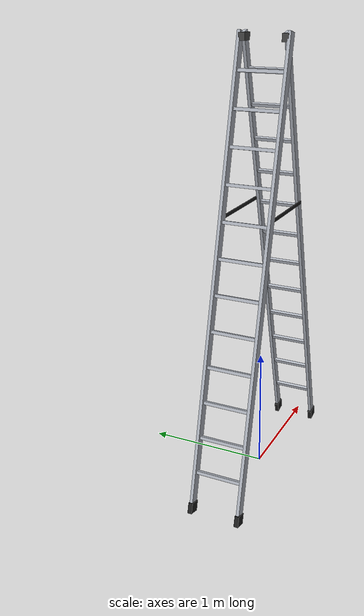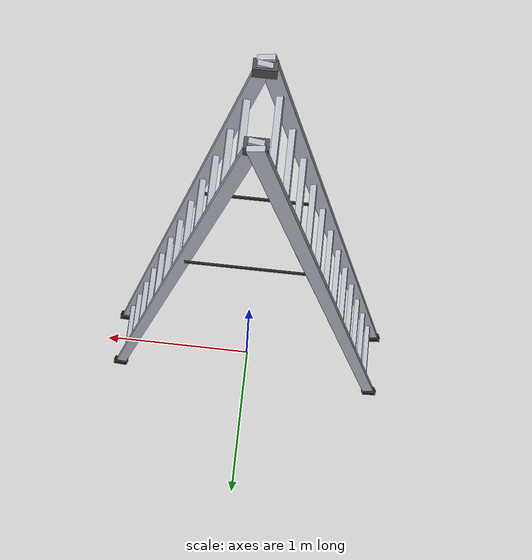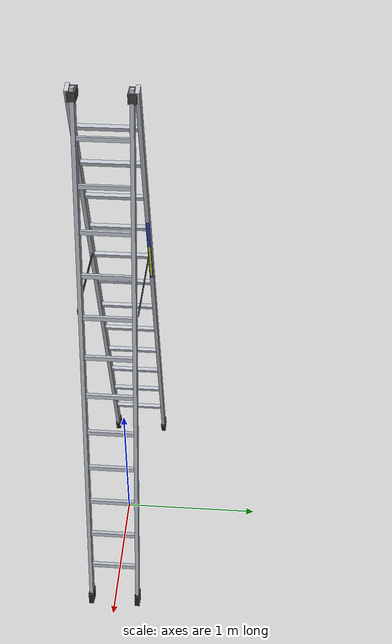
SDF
<?xml version="1.0" ?>
<sdf version="1.7">
  <model name="zarges_z600_40284">
    <static>true</static>
    <link name="base_link">
      <inertial>
        <pose>-0.0309624 0.000230729 1.79707 0 0 0</pose>
        <mass>15</mass>
        <inertia>
          <ixx>17.0625</ixx><ixy>0.000883718</ixy><ixz>-0.240365</ixz>
          <iyy>20.6274</iyy><iyz>-0.00166835</iyz><izz>4.44956</izz>
        </inertia>
      </inertial>
      <visual name="v_stile_000">
        <pose>-0.436669 -0.1975 1.83638 0 0.244346 0</pose>
        <geometry>
          <box>
            <size>0.075 0.025 3.61</size>
          </box>
        </geometry>
        <material>
          <script>
            <uri>file://media/materials/scripts/gazebo.material</uri>
            <name>Gazebo/Grey</name>
          </script>
          <ambient>0.55 0.57 0.6 1</ambient>
          <diffuse>0.72 0.74 0.78 1</diffuse>
          <specular>0.45 0.45 0.45 1</specular>
        </material>
      </visual>
      <collision name="c_stile_000">
        <pose>-0.436669 -0.1975 1.83638 0 0.244346 0</pose>
        <geometry>
          <box>
            <size>0.075 0.025 3.61</size>
          </box>
        </geometry>
        <surface><friction><ode>
          <mu>0.65</mu><mu2>0.65</mu2>
        </ode></friction></surface>
      </collision>
      <visual name="v_stile_001">
        <pose>-0.436669 0.1975 1.83638 0 0.244346 0</pose>
        <geometry>
          <box>
            <size>0.075 0.025 3.61</size>
          </box>
        </geometry>
        <material>
          <script>
            <uri>file://media/materials/scripts/gazebo.material</uri>
            <name>Gazebo/Grey</name>
          </script>
          <ambient>0.55 0.57 0.6 1</ambient>
          <diffuse>0.72 0.74 0.78 1</diffuse>
          <specular>0.45 0.45 0.45 1</specular>
        </material>
      </visual>
      <collision name="c_stile_001">
        <pose>-0.436669 0.1975 1.83638 0 0.244346 0</pose>
        <geometry>
          <box>
            <size>0.075 0.025 3.61</size>
          </box>
        </geometry>
        <surface><friction><ode>
          <mu>0.65</mu><mu2>0.65</mu2>
        </ode></friction></surface>
      </collision>
      <visual name="v_rung_002">
        <pose>-0.814067 0 0.322722 0 0.244346 0</pose>
        <geometry>
          <box>
            <size>0.03 0.37 0.025</size>
          </box>
        </geometry>
        <material>
          <script>
            <uri>file://media/materials/scripts/gazebo.material</uri>
            <name>Gazebo/Grey</name>
          </script>
          <ambient>0.55 0.57 0.6 1</ambient>
          <diffuse>0.72 0.74 0.78 1</diffuse>
          <specular>0.45 0.45 0.45 1</specular>
        </material>
      </visual>
      <collision name="c_rung_002">
        <pose>-0.814067 0 0.322722 0 0.244346 0</pose>
        <geometry>
          <box>
            <size>0.03 0.37 0.025</size>
          </box>
        </geometry>
        <surface><friction><ode>
          <mu>0.65</mu><mu2>0.65</mu2>
        </ode></friction></surface>
      </collision>
      <visual name="v_rung_003">
        <pose>-0.746329 0 0.594405 0 0.244346 0</pose>
        <geometry>
          <box>
            <size>0.03 0.37 0.025</size>
          </box>
        </geometry>
        <material>
          <script>
            <uri>file://media/materials/scripts/gazebo.material</uri>
            <name>Gazebo/Grey</name>
          </script>
          <ambient>0.55 0.57 0.6 1</ambient>
          <diffuse>0.72 0.74 0.78 1</diffuse>
          <specular>0.45 0.45 0.45 1</specular>
        </material>
      </visual>
      <collision name="c_rung_003">
        <pose>-0.746329 0 0.594405 0 0.244346 0</pose>
        <geometry>
          <box>
            <size>0.03 0.37 0.025</size>
          </box>
        </geometry>
        <surface><friction><ode>
          <mu>0.65</mu><mu2>0.65</mu2>
        </ode></friction></surface>
      </collision>
      <visual name="v_rung_004">
        <pose>-0.678591 0 0.866088 0 0.244346 0</pose>
        <geometry>
          <box>
            <size>0.03 0.37 0.025</size>
          </box>
        </geometry>
        <material>
          <script>
            <uri>file://media/materials/scripts/gazebo.material</uri>
            <name>Gazebo/Grey</name>
          </script>
          <ambient>0.55 0.57 0.6 1</ambient>
          <diffuse>0.72 0.74 0.78 1</diffuse>
          <specular>0.45 0.45 0.45 1</specular>
        </material>
      </visual>
      <collision name="c_rung_004">
        <pose>-0.678591 0 0.866088 0 0.244346 0</pose>
        <geometry>
          <box>
            <size>0.03 0.37 0.025</size>
          </box>
        </geometry>
        <surface><friction><ode>
          <mu>0.65</mu><mu2>0.65</mu2>
        </ode></friction></surface>
      </collision>
      <visual name="v_rung_005">
        <pose>-0.610853 0 1.13777 0 0.244346 0</pose>
        <geometry>
          <box>
            <size>0.03 0.37 0.025</size>
          </box>
        </geometry>
        <material>
          <script>
            <uri>file://media/materials/scripts/gazebo.material</uri>
            <name>Gazebo/Grey</name>
          </script>
          <ambient>0.55 0.57 0.6 1</ambient>
          <diffuse>0.72 0.74 0.78 1</diffuse>
          <specular>0.45 0.45 0.45 1</specular>
        </material>
      </visual>
      <collision name="c_rung_005">
        <pose>-0.610853 0 1.13777 0 0.244346 0</pose>
        <geometry>
          <box>
            <size>0.03 0.37 0.025</size>
          </box>
        </geometry>
        <surface><friction><ode>
          <mu>0.65</mu><mu2>0.65</mu2>
        </ode></friction></surface>
      </collision>
      <visual name="v_rung_006">
        <pose>-0.543115 0 1.40945 0 0.244346 0</pose>
        <geometry>
          <box>
            <size>0.03 0.37 0.025</size>
          </box>
        </geometry>
        <material>
          <script>
            <uri>file://media/materials/scripts/gazebo.material</uri>
            <name>Gazebo/Grey</name>
          </script>
          <ambient>0.55 0.57 0.6 1</ambient>
          <diffuse>0.72 0.74 0.78 1</diffuse>
          <specular>0.45 0.45 0.45 1</specular>
        </material>
      </visual>
      <collision name="c_rung_006">
        <pose>-0.543115 0 1.40945 0 0.244346 0</pose>
        <geometry>
          <box>
            <size>0.03 0.37 0.025</size>
          </box>
        </geometry>
        <surface><friction><ode>
          <mu>0.65</mu><mu2>0.65</mu2>
        </ode></friction></surface>
      </collision>
      <visual name="v_rung_007">
        <pose>-0.475377 0 1.68114 0 0.244346 0</pose>
        <geometry>
          <box>
            <size>0.03 0.37 0.025</size>
          </box>
        </geometry>
        <material>
          <script>
            <uri>file://media/materials/scripts/gazebo.material</uri>
            <name>Gazebo/Grey</name>
          </script>
          <ambient>0.55 0.57 0.6 1</ambient>
          <diffuse>0.72 0.74 0.78 1</diffuse>
          <specular>0.45 0.45 0.45 1</specular>
        </material>
      </visual>
      <collision name="c_rung_007">
        <pose>-0.475377 0 1.68114 0 0.244346 0</pose>
        <geometry>
          <box>
            <size>0.03 0.37 0.025</size>
          </box>
        </geometry>
        <surface><friction><ode>
          <mu>0.65</mu><mu2>0.65</mu2>
        </ode></friction></surface>
      </collision>
      <visual name="v_rung_008">
        <pose>-0.407638 0 1.95282 0 0.244346 0</pose>
        <geometry>
          <box>
            <size>0.03 0.37 0.025</size>
          </box>
        </geometry>
        <material>
          <script>
            <uri>file://media/materials/scripts/gazebo.material</uri>
            <name>Gazebo/Grey</name>
          </script>
          <ambient>0.55 0.57 0.6 1</ambient>
          <diffuse>0.72 0.74 0.78 1</diffuse>
          <specular>0.45 0.45 0.45 1</specular>
        </material>
      </visual>
      <collision name="c_rung_008">
        <pose>-0.407638 0 1.95282 0 0.244346 0</pose>
        <geometry>
          <box>
            <size>0.03 0.37 0.025</size>
          </box>
        </geometry>
        <surface><friction><ode>
          <mu>0.65</mu><mu2>0.65</mu2>
        </ode></friction></surface>
      </collision>
      <visual name="v_rung_009">
        <pose>-0.3399 0 2.2245 0 0.244346 0</pose>
        <geometry>
          <box>
            <size>0.03 0.37 0.025</size>
          </box>
        </geometry>
        <material>
          <script>
            <uri>file://media/materials/scripts/gazebo.material</uri>
            <name>Gazebo/Grey</name>
          </script>
          <ambient>0.55 0.57 0.6 1</ambient>
          <diffuse>0.72 0.74 0.78 1</diffuse>
          <specular>0.45 0.45 0.45 1</specular>
        </material>
      </visual>
      <collision name="c_rung_009">
        <pose>-0.3399 0 2.2245 0 0.244346 0</pose>
        <geometry>
          <box>
            <size>0.03 0.37 0.025</size>
          </box>
        </geometry>
        <surface><friction><ode>
          <mu>0.65</mu><mu2>0.65</mu2>
        </ode></friction></surface>
      </collision>
      <visual name="v_rung_010">
        <pose>-0.272162 0 2.49618 0 0.244346 0</pose>
        <geometry>
          <box>
            <size>0.03 0.37 0.025</size>
          </box>
        </geometry>
        <material>
          <script>
            <uri>file://media/materials/scripts/gazebo.material</uri>
            <name>Gazebo/Grey</name>
          </script>
          <ambient>0.55 0.57 0.6 1</ambient>
          <diffuse>0.72 0.74 0.78 1</diffuse>
          <specular>0.45 0.45 0.45 1</specular>
        </material>
      </visual>
      <collision name="c_rung_010">
        <pose>-0.272162 0 2.49618 0 0.244346 0</pose>
        <geometry>
          <box>
            <size>0.03 0.37 0.025</size>
          </box>
        </geometry>
        <surface><friction><ode>
          <mu>0.65</mu><mu2>0.65</mu2>
        </ode></friction></surface>
      </collision>
      <visual name="v_rung_011">
        <pose>-0.204424 0 2.76787 0 0.244346 0</pose>
        <geometry>
          <box>
            <size>0.03 0.37 0.025</size>
          </box>
        </geometry>
        <material>
          <script>
            <uri>file://media/materials/scripts/gazebo.material</uri>
            <name>Gazebo/Grey</name>
          </script>
          <ambient>0.55 0.57 0.6 1</ambient>
          <diffuse>0.72 0.74 0.78 1</diffuse>
          <specular>0.45 0.45 0.45 1</specular>
        </material>
      </visual>
      <collision name="c_rung_011">
        <pose>-0.204424 0 2.76787 0 0.244346 0</pose>
        <geometry>
          <box>
            <size>0.03 0.37 0.025</size>
          </box>
        </geometry>
        <surface><friction><ode>
          <mu>0.65</mu><mu2>0.65</mu2>
        </ode></friction></surface>
      </collision>
      <visual name="v_rung_012">
        <pose>-0.136686 0 3.03955 0 0.244346 0</pose>
        <geometry>
          <box>
            <size>0.03 0.37 0.025</size>
          </box>
        </geometry>
        <material>
          <script>
            <uri>file://media/materials/scripts/gazebo.material</uri>
            <name>Gazebo/Grey</name>
          </script>
          <ambient>0.55 0.57 0.6 1</ambient>
          <diffuse>0.72 0.74 0.78 1</diffuse>
          <specular>0.45 0.45 0.45 1</specular>
        </material>
      </visual>
      <collision name="c_rung_012">
        <pose>-0.136686 0 3.03955 0 0.244346 0</pose>
        <geometry>
          <box>
            <size>0.03 0.37 0.025</size>
          </box>
        </geometry>
        <surface><friction><ode>
          <mu>0.65</mu><mu2>0.65</mu2>
        </ode></friction></surface>
      </collision>
      <visual name="v_rung_013">
        <pose>-0.0689477 0 3.31123 0 0.244346 0</pose>
        <geometry>
          <box>
            <size>0.03 0.37 0.025</size>
          </box>
        </geometry>
        <material>
          <script>
            <uri>file://media/materials/scripts/gazebo.material</uri>
            <name>Gazebo/Grey</name>
          </script>
          <ambient>0.55 0.57 0.6 1</ambient>
          <diffuse>0.72 0.74 0.78 1</diffuse>
          <specular>0.45 0.45 0.45 1</specular>
        </material>
      </visual>
      <collision name="c_rung_013">
        <pose>-0.0689477 0 3.31123 0 0.244346 0</pose>
        <geometry>
          <box>
            <size>0.03 0.37 0.025</size>
          </box>
        </geometry>
        <surface><friction><ode>
          <mu>0.65</mu><mu2>0.65</mu2>
        </ode></friction></surface>
      </collision>
      <visual name="v_foot_014">
        <pose>-0.88362 -0.1975 0.0437624 0 0.244346 0</pose>
        <geometry>
          <box>
            <size>0.09 0.035 0.085</size>
          </box>
        </geometry>
        <material>
          <script>
            <uri>file://media/materials/scripts/gazebo.material</uri>
            <name>Gazebo/Black</name>
          </script>
          <ambient>0.06 0.06 0.07 1</ambient>
          <diffuse>0.15 0.15 0.16 1</diffuse>
          <specular>0.1 0.1 0.1 1</specular>
        </material>
      </visual>
      <collision name="c_foot_014">
        <pose>-0.88362 -0.1975 0.0437624 0 0.244346 0</pose>
        <geometry>
          <box>
            <size>0.09 0.035 0.085</size>
          </box>
        </geometry>
        <surface><friction><ode>
          <mu>0.65</mu><mu2>0.65</mu2>
        </ode></friction></surface>
      </collision>
      <visual name="v_foot_015">
        <pose>-0.88362 0.1975 0.0437624 0 0.244346 0</pose>
        <geometry>
          <box>
            <size>0.09 0.035 0.085</size>
          </box>
        </geometry>
        <material>
          <script>
            <uri>file://media/materials/scripts/gazebo.material</uri>
            <name>Gazebo/Black</name>
          </script>
          <ambient>0.06 0.06 0.07 1</ambient>
          <diffuse>0.15 0.15 0.16 1</diffuse>
          <specular>0.1 0.1 0.1 1</specular>
        </material>
      </visual>
      <collision name="c_foot_015">
        <pose>-0.88362 0.1975 0.0437624 0 0.244346 0</pose>
        <geometry>
          <box>
            <size>0.09 0.035 0.085</size>
          </box>
        </geometry>
        <surface><friction><ode>
          <mu>0.65</mu><mu2>0.65</mu2>
        </ode></friction></surface>
      </collision>
      <visual name="v_label_016">
        <pose>-0.279561 0.1975 2.30737 0 0.244346 0</pose>
        <geometry>
          <box>
            <size>0.002 0.02 0.55</size>
          </box>
        </geometry>
        <material>
          <script>
            <uri>file://media/materials/scripts/gazebo.material</uri>
            <name>Gazebo/Blue</name>
          </script>
          <ambient>0.05 0.18 0.38 1</ambient>
          <diffuse>0.1 0.35 0.7 1</diffuse>
          <specular>0.15 0.15 0.15 1</specular>
        </material>
      </visual>
      <visual name="v_label_017">
        <pose>-0.302783 0.1975 2.21009 0 0.244346 0</pose>
        <geometry>
          <box>
            <size>0.002 0.015 0.3</size>
          </box>
        </geometry>
        <material>
          <script>
            <uri>file://media/materials/scripts/gazebo.material</uri>
            <name>Gazebo/Yellow</name>
          </script>
          <ambient>0.45 0.4 0.05 1</ambient>
          <diffuse>0.9 0.8 0.1 1</diffuse>
          <specular>0.15 0.15 0.15 1</specular>
        </material>
      </visual>
      <visual name="v_stile_018">
        <pose>0.436669 -0.1675 1.83638 0 -0.244346 0</pose>
        <geometry>
          <box>
            <size>0.065 0.025 3.61</size>
          </box>
        </geometry>
        <material>
          <script>
            <uri>file://media/materials/scripts/gazebo.material</uri>
            <name>Gazebo/Grey</name>
          </script>
          <ambient>0.55 0.57 0.6 1</ambient>
          <diffuse>0.72 0.74 0.78 1</diffuse>
          <specular>0.45 0.45 0.45 1</specular>
        </material>
      </visual>
      <collision name="c_stile_018">
        <pose>0.436669 -0.1675 1.83638 0 -0.244346 0</pose>
        <geometry>
          <box>
            <size>0.065 0.025 3.61</size>
          </box>
        </geometry>
        <surface><friction><ode>
          <mu>0.65</mu><mu2>0.65</mu2>
        </ode></friction></surface>
      </collision>
      <visual name="v_stile_019">
        <pose>0.436669 0.1675 1.83638 0 -0.244346 0</pose>
        <geometry>
          <box>
            <size>0.065 0.025 3.61</size>
          </box>
        </geometry>
        <material>
          <script>
            <uri>file://media/materials/scripts/gazebo.material</uri>
            <name>Gazebo/Grey</name>
          </script>
          <ambient>0.55 0.57 0.6 1</ambient>
          <diffuse>0.72 0.74 0.78 1</diffuse>
          <specular>0.45 0.45 0.45 1</specular>
        </material>
      </visual>
      <collision name="c_stile_019">
        <pose>0.436669 0.1675 1.83638 0 -0.244346 0</pose>
        <geometry>
          <box>
            <size>0.065 0.025 3.61</size>
          </box>
        </geometry>
        <surface><friction><ode>
          <mu>0.65</mu><mu2>0.65</mu2>
        </ode></friction></surface>
      </collision>
      <visual name="v_rung_020">
        <pose>0.814067 0 0.322722 0 -0.244346 0</pose>
        <geometry>
          <box>
            <size>0.03 0.31 0.025</size>
          </box>
        </geometry>
        <material>
          <script>
            <uri>file://media/materials/scripts/gazebo.material</uri>
            <name>Gazebo/Grey</name>
          </script>
          <ambient>0.55 0.57 0.6 1</ambient>
          <diffuse>0.72 0.74 0.78 1</diffuse>
          <specular>0.45 0.45 0.45 1</specular>
        </material>
      </visual>
      <collision name="c_rung_020">
        <pose>0.814067 0 0.322722 0 -0.244346 0</pose>
        <geometry>
          <box>
            <size>0.03 0.31 0.025</size>
          </box>
        </geometry>
        <surface><friction><ode>
          <mu>0.65</mu><mu2>0.65</mu2>
        </ode></friction></surface>
      </collision>
      <visual name="v_rung_021">
        <pose>0.746329 0 0.594405 0 -0.244346 0</pose>
        <geometry>
          <box>
            <size>0.03 0.31 0.025</size>
          </box>
        </geometry>
        <material>
          <script>
            <uri>file://media/materials/scripts/gazebo.material</uri>
            <name>Gazebo/Grey</name>
          </script>
          <ambient>0.55 0.57 0.6 1</ambient>
          <diffuse>0.72 0.74 0.78 1</diffuse>
          <specular>0.45 0.45 0.45 1</specular>
        </material>
      </visual>
      <collision name="c_rung_021">
        <pose>0.746329 0 0.594405 0 -0.244346 0</pose>
        <geometry>
          <box>
            <size>0.03 0.31 0.025</size>
          </box>
        </geometry>
        <surface><friction><ode>
          <mu>0.65</mu><mu2>0.65</mu2>
        </ode></friction></surface>
      </collision>
      <visual name="v_rung_022">
        <pose>0.678591 0 0.866088 0 -0.244346 0</pose>
        <geometry>
          <box>
            <size>0.03 0.31 0.025</size>
          </box>
        </geometry>
        <material>
          <script>
            <uri>file://media/materials/scripts/gazebo.material</uri>
            <name>Gazebo/Grey</name>
          </script>
          <ambient>0.55 0.57 0.6 1</ambient>
          <diffuse>0.72 0.74 0.78 1</diffuse>
          <specular>0.45 0.45 0.45 1</specular>
        </material>
      </visual>
      <collision name="c_rung_022">
        <pose>0.678591 0 0.866088 0 -0.244346 0</pose>
        <geometry>
          <box>
            <size>0.03 0.31 0.025</size>
          </box>
        </geometry>
        <surface><friction><ode>
          <mu>0.65</mu><mu2>0.65</mu2>
        </ode></friction></surface>
      </collision>
      <visual name="v_rung_023">
        <pose>0.610853 0 1.13777 0 -0.244346 0</pose>
        <geometry>
          <box>
            <size>0.03 0.31 0.025</size>
          </box>
        </geometry>
        <material>
          <script>
            <uri>file://media/materials/scripts/gazebo.material</uri>
            <name>Gazebo/Grey</name>
          </script>
          <ambient>0.55 0.57 0.6 1</ambient>
          <diffuse>0.72 0.74 0.78 1</diffuse>
          <specular>0.45 0.45 0.45 1</specular>
        </material>
      </visual>
      <collision name="c_rung_023">
        <pose>0.610853 0 1.13777 0 -0.244346 0</pose>
        <geometry>
          <box>
            <size>0.03 0.31 0.025</size>
          </box>
        </geometry>
        <surface><friction><ode>
          <mu>0.65</mu><mu2>0.65</mu2>
        </ode></friction></surface>
      </collision>
      <visual name="v_rung_024">
        <pose>0.543115 0 1.40945 0 -0.244346 0</pose>
        <geometry>
          <box>
            <size>0.03 0.31 0.025</size>
          </box>
        </geometry>
        <material>
          <script>
            <uri>file://media/materials/scripts/gazebo.material</uri>
            <name>Gazebo/Grey</name>
          </script>
          <ambient>0.55 0.57 0.6 1</ambient>
          <diffuse>0.72 0.74 0.78 1</diffuse>
          <specular>0.45 0.45 0.45 1</specular>
        </material>
      </visual>
      <collision name="c_rung_024">
        <pose>0.543115 0 1.40945 0 -0.244346 0</pose>
        <geometry>
          <box>
            <size>0.03 0.31 0.025</size>
          </box>
        </geometry>
        <surface><friction><ode>
          <mu>0.65</mu><mu2>0.65</mu2>
        </ode></friction></surface>
      </collision>
      <visual name="v_rung_025">
        <pose>0.475377 0 1.68114 0 -0.244346 0</pose>
        <geometry>
          <box>
            <size>0.03 0.31 0.025</size>
          </box>
        </geometry>
        <material>
          <script>
            <uri>file://media/materials/scripts/gazebo.material</uri>
            <name>Gazebo/Grey</name>
          </script>
          <ambient>0.55 0.57 0.6 1</ambient>
          <diffuse>0.72 0.74 0.78 1</diffuse>
          <specular>0.45 0.45 0.45 1</specular>
        </material>
      </visual>
      <collision name="c_rung_025">
        <pose>0.475377 0 1.68114 0 -0.244346 0</pose>
        <geometry>
          <box>
            <size>0.03 0.31 0.025</size>
          </box>
        </geometry>
        <surface><friction><ode>
          <mu>0.65</mu><mu2>0.65</mu2>
        </ode></friction></surface>
      </collision>
      <visual name="v_rung_026">
        <pose>0.407638 0 1.95282 0 -0.244346 0</pose>
        <geometry>
          <box>
            <size>0.03 0.31 0.025</size>
          </box>
        </geometry>
        <material>
          <script>
            <uri>file://media/materials/scripts/gazebo.material</uri>
            <name>Gazebo/Grey</name>
          </script>
          <ambient>0.55 0.57 0.6 1</ambient>
          <diffuse>0.72 0.74 0.78 1</diffuse>
          <specular>0.45 0.45 0.45 1</specular>
        </material>
      </visual>
      <collision name="c_rung_026">
        <pose>0.407638 0 1.95282 0 -0.244346 0</pose>
        <geometry>
          <box>
            <size>0.03 0.31 0.025</size>
          </box>
        </geometry>
        <surface><friction><ode>
          <mu>0.65</mu><mu2>0.65</mu2>
        </ode></friction></surface>
      </collision>
      <visual name="v_rung_027">
        <pose>0.3399 0 2.2245 0 -0.244346 0</pose>
        <geometry>
          <box>
            <size>0.03 0.31 0.025</size>
          </box>
        </geometry>
        <material>
          <script>
            <uri>file://media/materials/scripts/gazebo.material</uri>
            <name>Gazebo/Grey</name>
          </script>
          <ambient>0.55 0.57 0.6 1</ambient>
          <diffuse>0.72 0.74 0.78 1</diffuse>
          <specular>0.45 0.45 0.45 1</specular>
        </material>
      </visual>
      <collision name="c_rung_027">
        <pose>0.3399 0 2.2245 0 -0.244346 0</pose>
        <geometry>
          <box>
            <size>0.03 0.31 0.025</size>
          </box>
        </geometry>
        <surface><friction><ode>
          <mu>0.65</mu><mu2>0.65</mu2>
        </ode></friction></surface>
      </collision>
      <visual name="v_rung_028">
        <pose>0.272162 0 2.49618 0 -0.244346 0</pose>
        <geometry>
          <box>
            <size>0.03 0.31 0.025</size>
          </box>
        </geometry>
        <material>
          <script>
            <uri>file://media/materials/scripts/gazebo.material</uri>
            <name>Gazebo/Grey</name>
          </script>
          <ambient>0.55 0.57 0.6 1</ambient>
          <diffuse>0.72 0.74 0.78 1</diffuse>
          <specular>0.45 0.45 0.45 1</specular>
        </material>
      </visual>
      <collision name="c_rung_028">
        <pose>0.272162 0 2.49618 0 -0.244346 0</pose>
        <geometry>
          <box>
            <size>0.03 0.31 0.025</size>
          </box>
        </geometry>
        <surface><friction><ode>
          <mu>0.65</mu><mu2>0.65</mu2>
        </ode></friction></surface>
      </collision>
      <visual name="v_rung_029">
        <pose>0.204424 0 2.76787 0 -0.244346 0</pose>
        <geometry>
          <box>
            <size>0.03 0.31 0.025</size>
          </box>
        </geometry>
        <material>
          <script>
            <uri>file://media/materials/scripts/gazebo.material</uri>
            <name>Gazebo/Grey</name>
          </script>
          <ambient>0.55 0.57 0.6 1</ambient>
          <diffuse>0.72 0.74 0.78 1</diffuse>
          <specular>0.45 0.45 0.45 1</specular>
        </material>
      </visual>
      <collision name="c_rung_029">
        <pose>0.204424 0 2.76787 0 -0.244346 0</pose>
        <geometry>
          <box>
            <size>0.03 0.31 0.025</size>
          </box>
        </geometry>
        <surface><friction><ode>
          <mu>0.65</mu><mu2>0.65</mu2>
        </ode></friction></surface>
      </collision>
      <visual name="v_rung_030">
        <pose>0.136686 0 3.03955 0 -0.244346 0</pose>
        <geometry>
          <box>
            <size>0.03 0.31 0.025</size>
          </box>
        </geometry>
        <material>
          <script>
            <uri>file://media/materials/scripts/gazebo.material</uri>
            <name>Gazebo/Grey</name>
          </script>
          <ambient>0.55 0.57 0.6 1</ambient>
          <diffuse>0.72 0.74 0.78 1</diffuse>
          <specular>0.45 0.45 0.45 1</specular>
        </material>
      </visual>
      <collision name="c_rung_030">
        <pose>0.136686 0 3.03955 0 -0.244346 0</pose>
        <geometry>
          <box>
            <size>0.03 0.31 0.025</size>
          </box>
        </geometry>
        <surface><friction><ode>
          <mu>0.65</mu><mu2>0.65</mu2>
        </ode></friction></surface>
      </collision>
      <visual name="v_rung_031">
        <pose>0.0689477 0 3.31123 0 -0.244346 0</pose>
        <geometry>
          <box>
            <size>0.03 0.31 0.025</size>
          </box>
        </geometry>
        <material>
          <script>
            <uri>file://media/materials/scripts/gazebo.material</uri>
            <name>Gazebo/Grey</name>
          </script>
          <ambient>0.55 0.57 0.6 1</ambient>
          <diffuse>0.72 0.74 0.78 1</diffuse>
          <specular>0.45 0.45 0.45 1</specular>
        </material>
      </visual>
      <collision name="c_rung_031">
        <pose>0.0689477 0 3.31123 0 -0.244346 0</pose>
        <geometry>
          <box>
            <size>0.03 0.31 0.025</size>
          </box>
        </geometry>
        <surface><friction><ode>
          <mu>0.65</mu><mu2>0.65</mu2>
        </ode></friction></surface>
      </collision>
      <visual name="v_foot_032">
        <pose>0.88362 -0.1675 0.0437624 0 -0.244346 0</pose>
        <geometry>
          <box>
            <size>0.09 0.035 0.085</size>
          </box>
        </geometry>
        <material>
          <script>
            <uri>file://media/materials/scripts/gazebo.material</uri>
            <name>Gazebo/Black</name>
          </script>
          <ambient>0.06 0.06 0.07 1</ambient>
          <diffuse>0.15 0.15 0.16 1</diffuse>
          <specular>0.1 0.1 0.1 1</specular>
        </material>
      </visual>
      <collision name="c_foot_032">
        <pose>0.88362 -0.1675 0.0437624 0 -0.244346 0</pose>
        <geometry>
          <box>
            <size>0.09 0.035 0.085</size>
          </box>
        </geometry>
        <surface><friction><ode>
          <mu>0.65</mu><mu2>0.65</mu2>
        </ode></friction></surface>
      </collision>
      <visual name="v_foot_033">
        <pose>0.88362 0.1675 0.0437624 0 -0.244346 0</pose>
        <geometry>
          <box>
            <size>0.09 0.035 0.085</size>
          </box>
        </geometry>
        <material>
          <script>
            <uri>file://media/materials/scripts/gazebo.material</uri>
            <name>Gazebo/Black</name>
          </script>
          <ambient>0.06 0.06 0.07 1</ambient>
          <diffuse>0.15 0.15 0.16 1</diffuse>
          <specular>0.1 0.1 0.1 1</specular>
        </material>
      </visual>
      <collision name="c_foot_033">
        <pose>0.88362 0.1675 0.0437624 0 -0.244346 0</pose>
        <geometry>
          <box>
            <size>0.09 0.035 0.085</size>
          </box>
        </geometry>
        <surface><friction><ode>
          <mu>0.65</mu><mu2>0.65</mu2>
        </ode></friction></surface>
      </collision>
      <visual name="v_hinge_034">
        <pose>0 -0.17 3.54777 0 0 0</pose>
        <geometry>
          <box>
            <size>0.1 0.05 0.06</size>
          </box>
        </geometry>
        <material>
          <script>
            <uri>file://media/materials/scripts/gazebo.material</uri>
            <name>Gazebo/DarkGrey</name>
          </script>
          <ambient>0.4 0.42 0.45 1</ambient>
          <diffuse>0.55 0.57 0.6 1</diffuse>
          <specular>0.35 0.35 0.35 1</specular>
        </material>
      </visual>
      <collision name="c_hinge_034">
        <pose>0 -0.17 3.54777 0 0 0</pose>
        <geometry>
          <box>
            <size>0.1 0.05 0.06</size>
          </box>
        </geometry>
        <surface><friction><ode>
          <mu>0.65</mu><mu2>0.65</mu2>
        </ode></friction></surface>
      </collision>
      <visual name="v_hinge_035">
        <pose>0 0.17 3.54777 0 0 0</pose>
        <geometry>
          <box>
            <size>0.1 0.05 0.06</size>
          </box>
        </geometry>
        <material>
          <script>
            <uri>file://media/materials/scripts/gazebo.material</uri>
            <name>Gazebo/DarkGrey</name>
          </script>
          <ambient>0.4 0.42 0.45 1</ambient>
          <diffuse>0.55 0.57 0.6 1</diffuse>
          <specular>0.35 0.35 0.35 1</specular>
        </material>
      </visual>
      <collision name="c_hinge_035">
        <pose>0 0.17 3.54777 0 0 0</pose>
        <geometry>
          <box>
            <size>0.1 0.05 0.06</size>
          </box>
        </geometry>
        <surface><friction><ode>
          <mu>0.65</mu><mu2>0.65</mu2>
        </ode></friction></surface>
      </collision>
      <visual name="v_strap_036">
        <pose>0 -0.19 2.25672 0 1.5708 0</pose>
        <geometry>
          <box>
            <size>0.03 0.004 0.663737</size>
          </box>
        </geometry>
        <material>
          <script>
            <uri>file://media/materials/scripts/gazebo.material</uri>
            <name>Gazebo/Black</name>
          </script>
          <ambient>0.06 0.06 0.07 1</ambient>
          <diffuse>0.15 0.15 0.16 1</diffuse>
          <specular>0.1 0.1 0.1 1</specular>
        </material>
      </visual>
      <visual name="v_strap_037">
        <pose>0 0.19 2.25672 0 1.5708 0</pose>
        <geometry>
          <box>
            <size>0.03 0.004 0.663737</size>
          </box>
        </geometry>
        <material>
          <script>
            <uri>file://media/materials/scripts/gazebo.material</uri>
            <name>Gazebo/Black</name>
          </script>
          <ambient>0.06 0.06 0.07 1</ambient>
          <diffuse>0.15 0.15 0.16 1</diffuse>
          <specular>0.1 0.1 0.1 1</specular>
        </material>
      </visual>
    </link>
  </model>
</sdf>
